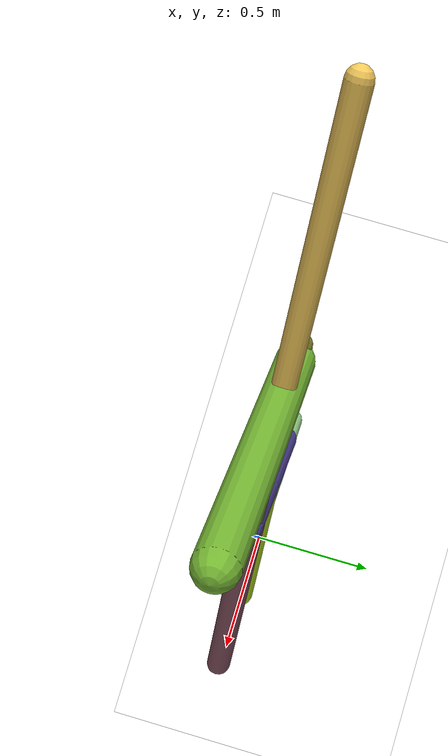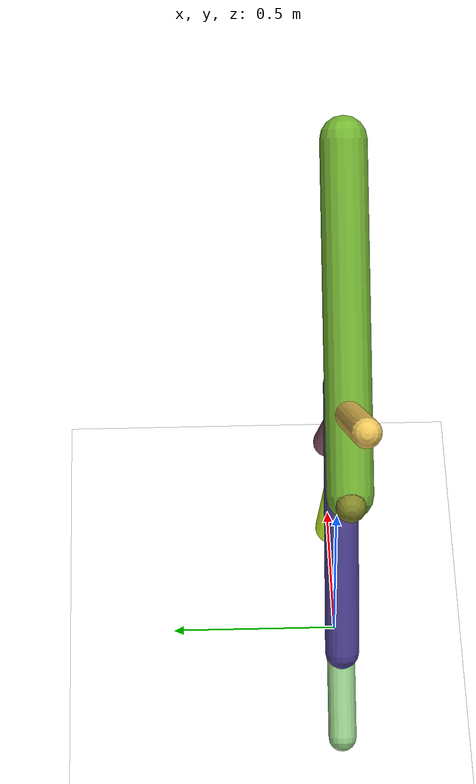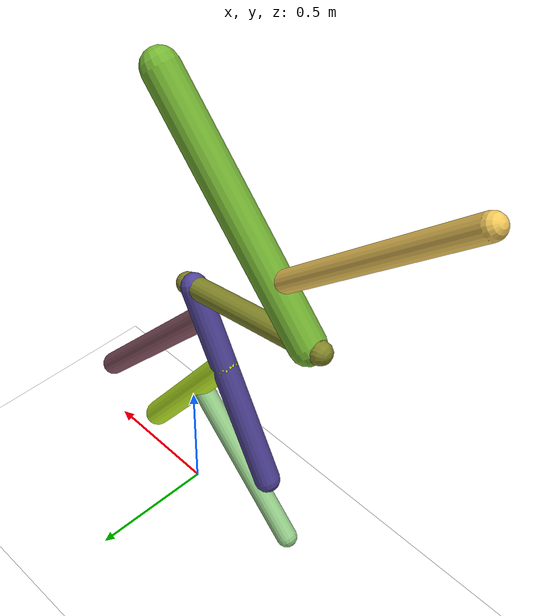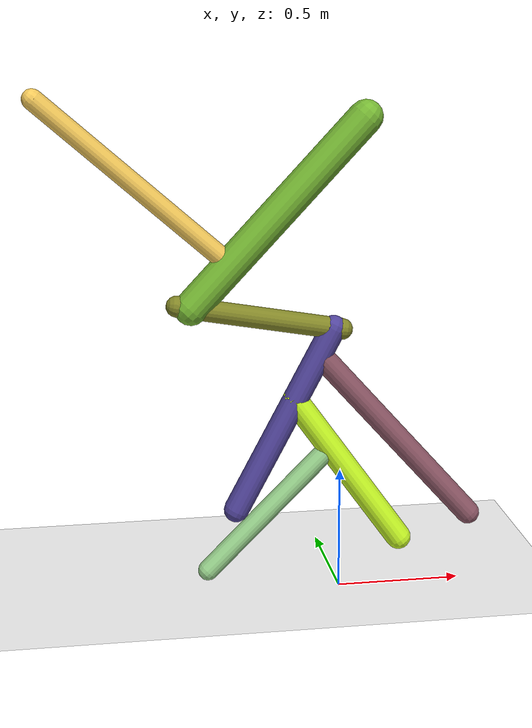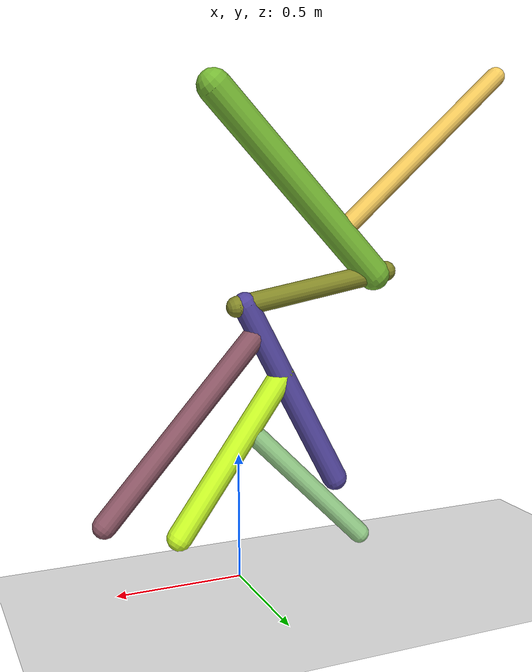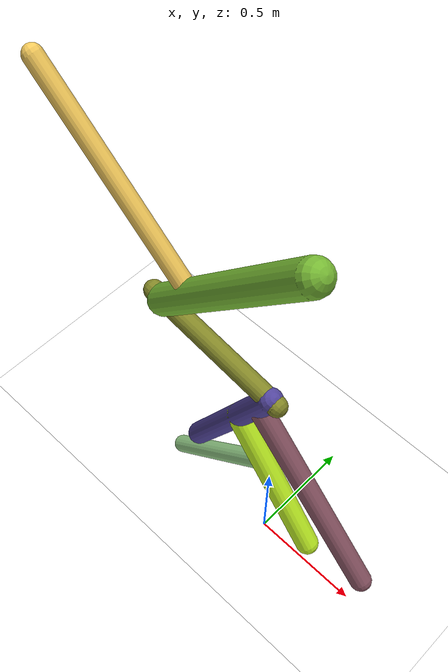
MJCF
<mujoco model="morphology">
  <option timestep="0.01"/>
  <default>
    <default class="/"/>
    <default class="0/"/>
    <default class="0/1/"/>
    <default class="0/1/2/"/>
    <default class="0/3/"/>
    <default class="0/3/4/"/>
    <default class="0/3/4/5/"/>
    <default class="0/3/6/"/>
  </default>
  <asset>
    <texture name="texplane" type="2d" builtin="checker" rgb1="0.10000000000000001 0.20000000000000001 0.29999999999999999" rgb2="0.20000000000000001 0.29999999999999999 0.40000000000000002" width="300" height="300"/>
    <material name="MatPlane" class="/" texture="texplane" texrepeat="20 20" specular="1" shininess="1" reflectance="0.5"/>
  </asset>
  <worldbody>
    <light name="//unnamed_light_0" class="/" directional="true" pos="0 0 1.5" dir="0 0 -1.3" cutoff="100" exponent="1" diffuse="1 1 1" specular="0.10000000000000001 0.10000000000000001 0.10000000000000001"/>
    <geom name="ground" class="/" type="plane" size="15 15 0.5" material="MatPlane" rgba="1 1 1 1"/>
    <site name="body" class="/" size="9.9999999999999995e-07 9.9999999999999995e-07 9.9999999999999995e-07" pos="0 0 1.0902424216270448"/>
    <body pos="0 0 1.0902424216270448" name="0/">
      <joint name="0/rootx/" class="/" type="slide" axis="1 0 0" limited="false" stiffness="0" armature="0" damping="0"/>
      <joint name="0/rootz/" class="/" type="slide" axis="0 0 1" limited="false" stiffness="0" armature="0" damping="0"/>
      <joint name="0/rooty/" class="/" type="hinge" axis="0 1 0" limited="false" stiffness="0" armature="0" damping="0"/>
      <geom name="0/geom" class="0/" type="capsule" contype="1" conaffinity="1" condim="3" size="0.043056627315821903" rgba="0.50919774827375852 0.52399143477694898 0.15332503073214421 1" friction="0.59999999999999998 0.10000000000000001 0.10000000000000001" fromto="0 0 0 -0.65219473666458827 0 0.11759318222897219"/>
      <site name="0/end0" class="0/" size="0.0050000000000000001" pos="-0.65219473666458827 0 0.11759318222897219"/>
      <site name="0/attach1" class="0/" size="9.9999999999999995e-07 9.9999999999999995e-07 9.9999999999999995e-07" pos="-0.59680767168991944 0 0.1076066845488418"/>
      <body pos="-0.59680767168991944 0 0.1076066845488418" name="0/1/">
        <joint name="0/1/joint/" class="0/" type="hinge" axis="0 1 0" limited="true" range="-31.488016825447204 31.488016825447204"/>
        <geom name="0/1/geom" class="0/1/" type="capsule" contype="1" conaffinity="1" condim="3" size="0.067428311145075276" rgba="0.45913276229127986 0.71454164421467758 0.19983886503365733 1" friction="0.59999999999999998 0.10000000000000001 0.10000000000000001" fromto="0 0 0 0.67988341390569529 0 0.72803865111364274"/>
        <site name="0/1/end1" class="0/1/" size="0.0050000000000000001" pos="0.67988341390569529 0 0.72803865111364274"/>
        <site name="0/1/attach2" class="0/1/" size="9.9999999999999995e-07 9.9999999999999995e-07 9.9999999999999995e-07" pos="0.15584182390774814 0 0.16687989285266541"/>
        <body pos="0.15584182390774814 0 0.16687989285266541" name="0/1/2/">
          <joint name="0/1/2/joint/" class="0/1/" type="hinge" axis="0 1 0" limited="true" range="-60.954007684505413 60.954007684505413"/>
          <geom name="0/1/2/geom" class="0/1/2/" type="capsule" contype="1" conaffinity="1" condim="3" size="0.04037277631988441" rgba="0.94402394577496851 0.77986434831425699 0.34961620074273925 1" friction="0.59999999999999998 0.10000000000000001 0.10000000000000001" fromto="0 0 0 -0.73508900688780865 0 0.65330587823132036"/>
          <site name="0/1/2/end2" class="0/1/2/" size="0.0050000000000000001" pos="-0.73508900688780865 0 0.65330587823132036"/>
        </body>
      </body>
      <site name="0/attach3" class="0/" size="9.9999999999999995e-07 9.9999999999999995e-07 9.9999999999999995e-07" pos="-0.033438206941392663 0 0.0060290354110776575"/>
      <body pos="-0.033438206941392663 0 0.0060290354110776575" name="0/3/">
        <joint name="0/3/joint/" class="0/" type="hinge" axis="0 1 0" limited="true" range="-41.033120307263474 41.033120307263474"/>
        <geom name="0/3/geom" class="0/3/" type="capsule" contype="1" conaffinity="1" condim="3" size="0.050750426200544409" rgba="0.31853670963658598 0.26785691925883248 0.61107458340631671 1" friction="0.59999999999999998 0.10000000000000001 0.10000000000000001" fromto="0 0 0 -0.38966549858472999 0 -0.74131933250383142"/>
        <site name="0/3/end3" class="0/3/" size="0.0050000000000000001" pos="-0.38966549858472999 0 -0.74131933250383142"/>
        <site name="0/3/attach4" class="0/3/" size="9.9999999999999995e-07 9.9999999999999995e-07 9.9999999999999995e-07" pos="-0.15326724484284712 0 -0.29158335047436812"/>
        <body pos="-0.15326724484284712 0 -0.29158335047436812" name="0/3/4/">
          <joint name="0/3/4/joint/" class="0/3/" type="hinge" axis="0 1 0" limited="true" range="-55.607505810068062 55.607505810068062"/>
          <geom name="0/3/4/geom" class="0/3/4/" type="capsule" contype="1" conaffinity="1" condim="3" size="0.051212179645373765" rgba="0.79410399972372425 0.99423307978930842 0.1524498807933421 1" friction="0.59999999999999998 0.10000000000000001 0.10000000000000001" fromto="0 0 0 0.43378596424842364 0 -0.60947856978364423"/>
          <site name="0/3/4/end4" class="0/3/4/" size="0.0050000000000000001" pos="0.43378596424842364 0 -0.60947856978364423"/>
          <site name="0/3/4/attach5" class="0/3/4/" size="9.9999999999999995e-07 9.9999999999999995e-07 9.9999999999999995e-07" pos="0.14462188382376451 0 -0.20319684401278934"/>
          <body pos="0.14462188382376451 0 -0.20319684401278934" name="0/3/4/5/">
            <joint name="0/3/4/5/joint/" class="0/3/4/" type="hinge" axis="0 1 0" limited="true" range="-37.357303012486064 37.357303012486064"/>
            <geom name="0/3/4/5/geom" class="0/3/4/5/" type="capsule" contype="1" conaffinity="1" condim="3" size="0.041707325110479844" rgba="0.59650683678459437 0.82196745883307432 0.54874329455574766 1" friction="0.59999999999999998 0.10000000000000001 0.10000000000000001" fromto="0 0 0 -0.49719359145766956 0 -0.50149125229496949"/>
            <site name="0/3/4/5/end5" class="0/3/4/5/" size="0.0050000000000000001" pos="-0.49719359145766956 0 -0.50149125229496949"/>
          </body>
        </body>
        <site name="0/3/attach6" class="0/3/" size="9.9999999999999995e-07 9.9999999999999995e-07 9.9999999999999995e-07" pos="-0.05561997536390894 0 -0.10581425135252738"/>
        <body pos="-0.05561997536390894 0 -0.10581425135252738" name="0/3/6/">
          <joint name="0/3/6/joint/" class="0/3/" type="hinge" axis="0 1 0" limited="true" range="-57.824121912497645 57.824121912497645"/>
          <geom name="0/3/6/geom" class="0/3/6/" type="capsule" contype="1" conaffinity="1" condim="3" size="0.047610283647077332" rgba="0.54870776050857972 0.33775690275867365 0.39660705753957437 1" friction="0.59999999999999998 0.10000000000000001 0.10000000000000001" fromto="0 0 0 0.62721909033922474 0 -0.70645530365088249"/>
          <site name="0/3/6/end6" class="0/3/6/" size="0.0050000000000000001" pos="0.62721909033922474 0 -0.70645530365088249"/>
        </body>
      </body>
      <camera name="0/side" class="0/" mode="trackcom" pos="0.40000000000000002 -4 0.20000000000000001" quat="0.70699999999999996 0.70699999999999996 0 0"/>
    </body>
  </worldbody>
  <actuator>
    <motor name="0/1/motor" class="0/1/" ctrllimited="true" ctrlrange="-1 1" gear="63" joint="0/1/joint/"/>
    <motor name="0/1/2/motor" class="0/1/2/" ctrllimited="true" ctrlrange="-1 1" gear="62" joint="0/1/2/joint/"/>
    <motor name="0/3/motor" class="0/3/" ctrllimited="true" ctrlrange="-1 1" gear="85" joint="0/3/joint/"/>
    <motor name="0/3/4/motor" class="0/3/4/" ctrllimited="true" ctrlrange="-1 1" gear="73" joint="0/3/4/joint/"/>
    <motor name="0/3/4/5/motor" class="0/3/4/5/" ctrllimited="true" ctrlrange="-1 1" gear="69" joint="0/3/4/5/joint/"/>
    <motor name="0/3/6/motor" class="0/3/6/" ctrllimited="true" ctrlrange="-1 1" gear="74" joint="0/3/6/joint/"/>
  </actuator>
  <sensor>
    <subtreelinvel name="velocity" body="0/"/>
  </sensor>
</mujoco>
